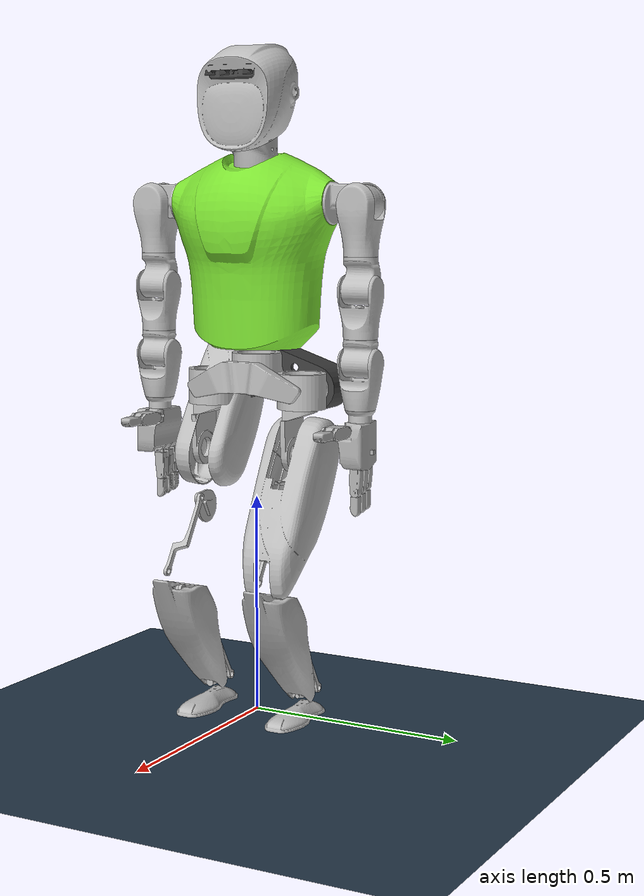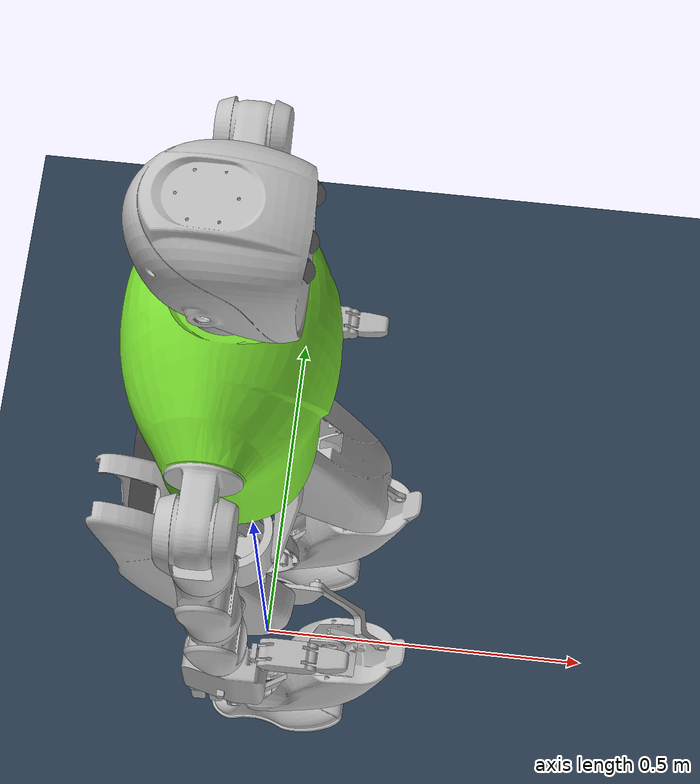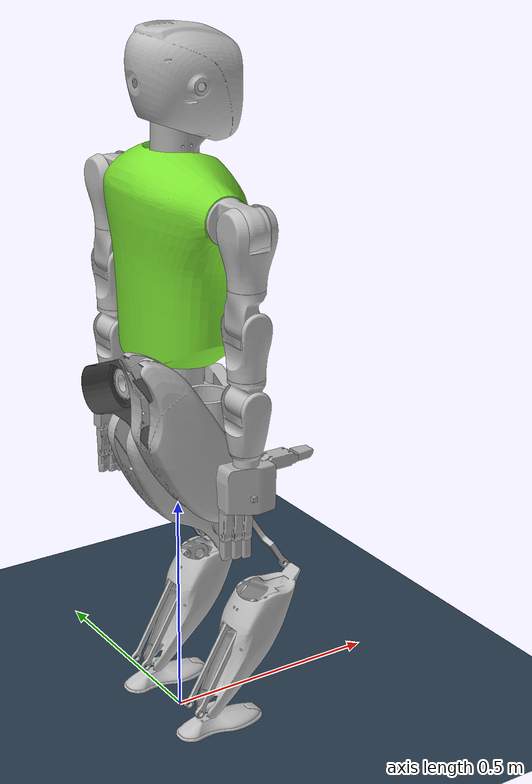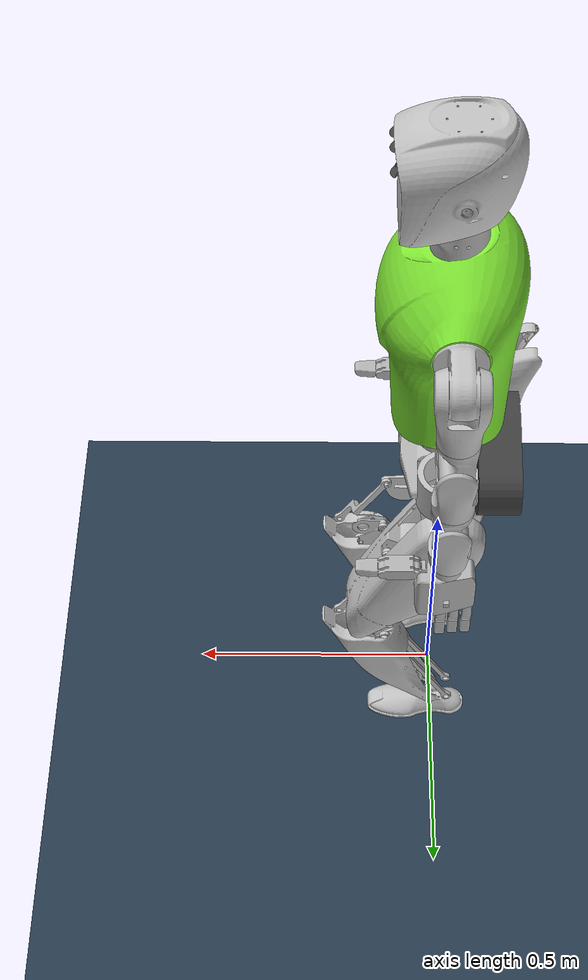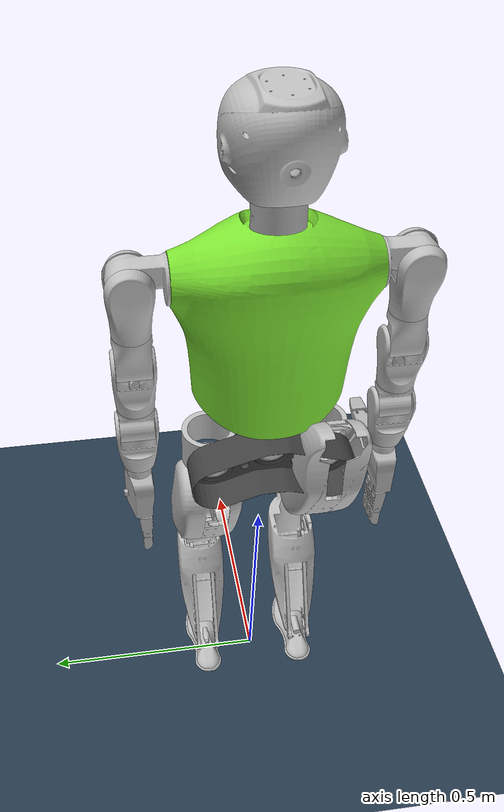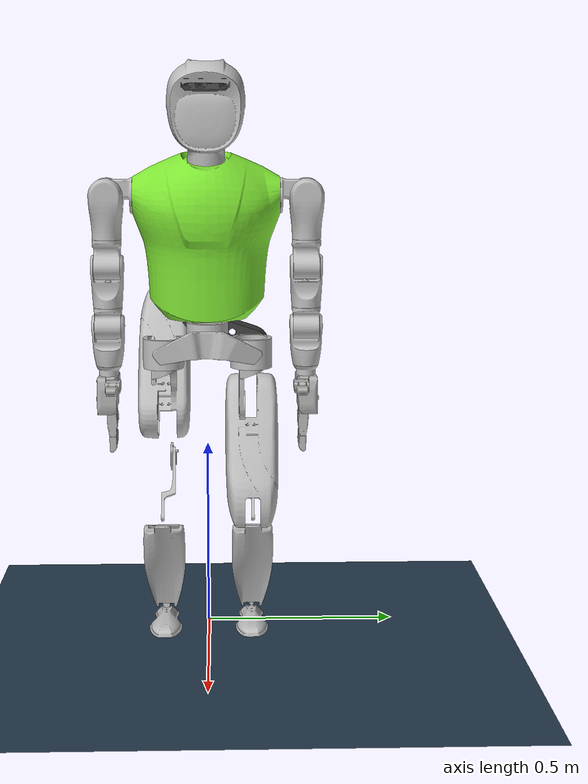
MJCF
<mujoco model="XBot-L">
  <compiler angle="radian" meshdir="../meshes/" eulerseq="zyx"/>
    <option timestep='0.001' iterations='50' solver='PGS' gravity='0 0 -9.81'>
    <flag sensornoise="enable" frictionloss="enable"/>
    </option>
    <size njmax="500" nconmax="100" />

    <visual>
        <quality shadowsize='4096'/>
        <map znear='0.05'/>
    </visual>

    <default>
        <joint limited='true'/>
        <motor ctrllimited='true'/>
        <geom  condim='4' contype="1" conaffinity="15" solref='0.001 2' friction='0.9 0.2 0.2'/>
        <equality solref='0.001 2'/>
        <default class='visualgeom'>
            <geom material='visualgeom' condim='1' contype='0' conaffinity='0'/>
        </default>
        <default class='visualgeom2'>
            <geom material='visualgeom2' condim='1' contype='0' conaffinity='0'/>
        </default>
        <default class='obstacle'>
            <geom material='obstacle' condim='3' contype='1' conaffinity='15'/>
        </default>

        <default class='neck_joint_param'>
            <joint  damping="0.01" frictionloss="0.01" armature="0.01"/>
        </default>

        <default class='waist_joint_param'>
            <joint  damping="2" frictionloss="2" armature="0.01"/>
        </default>

        <default class='leg_joint_param'>
            <joint  damping="0.01" frictionloss="0.01" armature="0.01"/>
        </default>

        <default class='arm_joint_param'>
            <joint  damping="1" frictionloss="1" armature="0.01"/>
        </default>

        <default class='finger_joint_param'>
            <joint  damping="0.00" frictionloss="0.00" armature="0.01"/>
        </default>
    </default>

  <asset>
    <texture type="skybox" builtin="gradient" rgb1="0.3 0.5 0.7" rgb2="0 0 0" width="512" height="512"/>
    <texture name="texplane" type="2d" builtin="checker" rgb1=".2 .3 .4" rgb2=".1 0.15 0.2"
        width="512" height="512" mark="cross" markrgb=".8 .8 .8"/>
    <texture name="texplane2" type="2d" builtin="checker" rgb1="1 0.3137 0.1843" rgb2="0.0 0.30196 0.38039"
        width="512" height="512" mark="cross" markrgb=".8 .8 .8"/>

    <material name="matplane" reflectance="0." texture="texplane" texrepeat="1 1" texuniform="true"/>
    <material name="matplane2" reflectance="0.1" texture="texplane2" texrepeat="1 1" texuniform="true"/>

    <material name='obstacle'  rgba='0.9 0.6 0.2 1'/>
    <material name='visualgeom'  rgba='0.5 0.9 0.2 1'/>
    <material name='visualgeom2'  rgba='0.5 0.9 0.2 1'/>

    <mesh name="base_link" file="base_link.STL"/>
    <mesh name="neck_base_link" file="neck_base_link.STL"/>
    <mesh name="neck_yaw_link" file="neck_yaw_link.STL"/>
    <mesh name="neck_pitch_link" file="neck_pitch_link.STL"/>
    <mesh name="realsense_link" file="realsense_link.STL"/>
    <mesh name="left_arm_base_link" file="left_arm_base_link.STL"/>
    <mesh name="left_shoulder_pitch_link" file="left_shoulder_pitch_link.STL"/>
    <mesh name="left_shoulder_roll_link" file="left_shoulder_roll_link.STL"/>
    <mesh name="left_arm_yaw_link" file="left_arm_yaw_link.STL"/>
    <mesh name="left_elbow_pitch_link" file="left_elbow_pitch_link.STL"/>
    <mesh name="left_elbow_yaw_link" file="left_elbow_yaw_link.STL"/>
    <mesh name="left_wrist_roll_link" file="left_wrist_roll_link.STL"/>
    <mesh name="left_wrist_yaw_link" file="left_wrist_yaw_link.STL"/>
    <mesh name="right_arm_base_link" file="right_arm_base_link.STL"/>
    <mesh name="right_shoulder_pitch_link" file="right_shoulder_pitch_link.STL"/>
    <mesh name="right_shoulder_roll_link" file="right_shoulder_roll_link.STL"/>
    <mesh name="right_arm_yaw_link" file="right_arm_yaw_link.STL"/>
    <mesh name="right_elbow_pitch_link" file="right_elbow_pitch_link.STL"/>
    <mesh name="right_elbow_yaw_link" file="right_elbow_yaw_link.STL"/>
    <mesh name="right_wrist_roll_link" file="right_wrist_roll_link.STL"/>
    <mesh name="right_wrist_yaw_link" file="right_wrist_yaw_link.STL"/>
    <mesh name="waist_yaw_link" file="waist_yaw_link.STL"/>
    <mesh name="waist_roll_link" file="waist_roll_link.STL"/>
    <mesh name="left_leg_roll_link" file="left_leg_roll_link.STL"/>
    <mesh name="left_leg_yaw_link" file="left_leg_yaw_link.STL"/>
    <mesh name="left_leg_pitch_link" file="left_leg_pitch_link.STL"/>
    <mesh name="left_knee_link" file="left_knee_link.STL"/>
    <mesh name="left_ankle_pitch_link" file="left_ankle_pitch_link.STL"/>
    <mesh name="left_ankle_roll_link" file="left_ankle_roll_link.STL"/>
    <mesh name="left_foot_ee_link" file="left_foot_ee_link.STL"/>
    <mesh name="left_ankle_pitch_motor1_link" file="left_ankle_pitch_motor1_link.STL"/>
    <mesh name="left_ankle_pitch_linkage1_link" file="left_ankle_pitch_linkage1_link.STL"/>
    <mesh name="left_ankle_pitch_motor2_link" file="left_ankle_pitch_motor2_link.STL"/>
    <mesh name="left_ankle_pitch_linkage2_link" file="left_ankle_pitch_linkage2_link.STL"/>
    <mesh name="left_knee_motor_link" file="left_knee_motor_link.STL"/>
    <mesh name="left_knee_linkage_link" file="left_knee_linkage_link.STL"/>
    <mesh name="right_leg_roll_link" file="right_leg_roll_link.STL"/>
    <mesh name="right_leg_yaw_link" file="right_leg_yaw_link.STL"/>
    <mesh name="right_leg_pitch_link" file="right_leg_pitch_link.STL"/>
    <mesh name="right_knee_link" file="right_knee_link.STL"/>
    <mesh name="right_ankle_pitch_link" file="right_ankle_pitch_link.STL"/>
    <mesh name="right_ankle_roll_link" file="right_ankle_roll_link.STL"/>
    <mesh name="right_foot_ee_link" file="right_foot_ee_link.STL"/>
    <mesh name="right_ankle_pitch_motor1_link" file="right_ankle_pitch_motor1_link.STL"/>
    <mesh name="right_ankle_pitch_linkage1_link" file="right_ankle_pitch_linkage1_link.STL"/>
    <mesh name="right_ankle_pitch_motor2_link" file="right_ankle_pitch_motor2_link.STL"/>
    <mesh name="right_ankle_pitch_linkage2_link" file="right_ankle_pitch_linkage2_link.STL"/>
    <mesh name="right_knee_motor_link" file="right_knee_motor_link.STL"/>
    <mesh name="right_knee_linkage_link" file="right_knee_linkage_link.STL"/>
    <mesh name="left_hand_link" file="left_hand_link.STL"/>
    <mesh name="left_hand_thumb_bend_link" file="left_hand_thumb_bend_link.STL"/>
    <mesh name="left_hand_thumb_rota_link1" file="left_hand_thumb_rota_link1.STL"/>
    <mesh name="left_hand_thumb_rota_link2" file="left_hand_thumb_rota_link2.STL"/>
    <mesh name="left_hand_thumb_tip" file="left_hand_thumb_tip.STL"/>
    <mesh name="left_hand_index_rota_link1" file="left_hand_index_rota_link1.STL"/>
    <mesh name="left_hand_index_rota_link2" file="left_hand_index_rota_link2.STL"/>
    <mesh name="left_hand_index_tip" file="left_hand_index_tip.STL"/>
    <mesh name="left_hand_mid_link1" file="left_hand_mid_link1.STL"/>
    <mesh name="left_hand_mid_link2" file="left_hand_mid_link2.STL"/>
    <mesh name="left_hand_mid_tip" file="left_hand_mid_tip.STL"/>
    <mesh name="left_hand_ring_link1" file="left_hand_ring_link1.STL"/>
    <mesh name="left_hand_ring_link2" file="left_hand_ring_link2.STL"/>
    <mesh name="left_hand_ring_tip" file="left_hand_ring_tip.STL"/>
    <mesh name="left_hand_pinky_link1" file="left_hand_pinky_link1.STL"/>
    <mesh name="left_hand_pinky_link2" file="left_hand_pinky_link2.STL"/>
    <mesh name="left_hand_pinky_tip" file="left_hand_pinky_tip.STL"/>
    <mesh name="left_hand_ee_link" file="left_hand_ee_link.STL"/>
    <mesh name="right_hand_link" file="right_hand_link.STL"/>
    <mesh name="right_hand_thumb_bend_link" file="right_hand_thumb_bend_link.STL"/>
    <mesh name="right_hand_thumb_rota_link1" file="right_hand_thumb_rota_link1.STL"/>
    <mesh name="right_hand_thumb_rota_link2" file="right_hand_thumb_rota_link2.STL"/>
    <mesh name="right_hand_thumb_rota_tip" file="right_hand_thumb_rota_tip.STL"/>
    <mesh name="right_hand_mid_link1" file="right_hand_mid_link1.STL"/>
    <mesh name="right_hand_mid_link2" file="right_hand_mid_link2.STL"/>
    <mesh name="right_hand_mid_tip" file="right_hand_mid_tip.STL"/>
    <mesh name="right_hand_ring_link1" file="right_hand_ring_link1.STL"/>
    <mesh name="right_hand_ring_link2" file="right_hand_ring_link2.STL"/>
    <mesh name="right_hand_ring_tip" file="right_hand_ring_tip.STL"/>
    <mesh name="right_hand_pinky_link1" file="right_hand_pinky_link1.STL"/>
    <mesh name="right_hand_pinky_link2" file="right_hand_pinky_link2.STL"/>
    <mesh name="right_hand_pinky_tip" file="right_hand_pinky_tip.STL"/>
    <mesh name="right_hand_ee_link" file="right_hand_ee_link.STL"/>
    <mesh name="right_hand_index_rota_link1" file="right_hand_index_rota_link1.STL"/>
    <mesh name="right_hand_index_rota_link2" file="right_hand_index_rota_link2.STL"/>
    <mesh name="right_hand_index_tip" file="right_hand_index_tip.STL"/>

    <hfield name='hf0' nrow='200' ncol='200' size="10 5 0.2 .1"/>
  </asset>
  <worldbody>

    <light directional="true" diffuse=".4 .4 .4" specular="0.1 0.1 0.1" pos="0 0 5.0" dir="0 0 -1" castshadow="false"/>
    <light directional="true" diffuse=".6 .6 .6" specular="0.2 0.2 0.2" pos="0 0 4" dir="0 0 -1"/>
    <geom name="ground" type="plane" size="0 0 1" pos="0.001 0 0" quat="1 0 0 0" material="matplane" condim="1" conaffinity='15'/>

    <body name="base_link" pos="0.0 0.0 0.88">

      <geom type="mesh" mesh="base_link" group="1" class="visualgeom"/>

      <inertial pos="-0.0033599 -0.00084664 0.1336" mass="9.9576" diaginertia="0.089966 0.060002 0.056135" />
      <joint type='slide' axis='1 0 0' limited='false' />
      <joint type='slide' axis='0 1 0' limited='false' />
      <joint type='slide' axis='0 0 1' limited='false' />
      <joint type='ball' limited='false' />
      <site name='imu' size='0.01' pos='0.0 0 0.0'/>

    <geom type="mesh" contype="0" conaffinity="0" group="1" density="0" rgba="0.75294 0.75294 0.75294 1" mesh="base_link"/>
    <geom type="mesh" rgba="0.75294 0.75294 0.75294 1" mesh="base_link" class="visualgeom"/>
    <geom pos="0 0 0.4" type="mesh" contype="0" conaffinity="0" group="1" density="0" rgba="0.86667 0.86667 0.8902 1" mesh="neck_base_link"/>
    <geom pos="0 0 0.4" type="mesh" rgba="0.86667 0.86667 0.8902 1" mesh="neck_base_link" class="visualgeom"/>
    <geom pos="0 0 0.2885" quat="0.499998 -0.5 -0.5 -0.500002" type="mesh" contype="0" conaffinity="0" group="1" density="0" rgba="0.75294 0.75294 0.75294 1" mesh="left_arm_base_link"/>
    <geom pos="0 0 0.2885" quat="0.499998 -0.5 -0.5 -0.500002" type="mesh" rgba="0.75294 0.75294 0.75294 1" mesh="left_arm_base_link"  class="visualgeom" />
    <geom pos="0 0 0.2885" quat="0.499998 0.5 -0.5 0.500002" type="mesh" contype="0" conaffinity="0" group="1" density="0" rgba="0.75294 0.75294 0.75294 1" mesh="right_arm_base_link"/>
    <geom pos="0 0 0.2885" quat="0.499998 0.5 -0.5 0.500002" type="mesh" rgba="0.75294 0.75294 0.75294 1" mesh="right_arm_base_link"  class="visualgeom"/>
    <body name="neck_yaw_link" pos="0 0 0.4">
      <inertial pos="0.023237 0.004247 0.035877" quat="0.397005 0.586611 0.583833 0.396754" mass="0.64979" diaginertia="0.000560363 0.000386635 0.000329382"/>
      <geom type="mesh" contype="0" conaffinity="0" group="1" density="0" rgba="0.69804 0.69804 0.69804 1" mesh="neck_yaw_link" />
      <geom type="mesh" rgba="0.69804 0.69804 0.69804 1" mesh="neck_yaw_link" class="visualgeom"/>
      <body name="neck_pitch_link" pos="0.032 0 0.044" quat="0.707105 -0.707108 0 0">
        <inertial pos="0.00116474 -0.0898836 0.000341624" quat="0.684515 0.684048 -0.178412 -0.178009" mass="1.39851" diaginertia="0.00709534 0.00537421 0.00502512"/>
        <geom type="mesh" contype="0" conaffinity="0" group="1" density="0" rgba="0.75294 0.75294 0.75294 1" mesh="neck_pitch_link"/>
        <geom type="mesh" rgba="0.75294 0.75294 0.75294 1" mesh="neck_pitch_link" class="visualgeom"/>
        <geom pos="0.066371 -0.12536 0.0475" quat="0.696363 0.122789 0.696365 -0.122789" type="mesh" contype="0" conaffinity="0" group="1" density="0" rgba="0.25098 0.25098 0.25098 1" mesh="realsense_link"/>
        <geom pos="0.066371 -0.12536 0.0475" quat="0.696363 0.122789 0.696365 -0.122789" type="mesh" rgba="0.25098 0.25098 0.25098 1" mesh="realsense_link" class="visualgeom"/>
      </body>
    </body>
    <body name="left_shoulder_pitch_link" pos="9.6789e-07 0.2635 0.2885" quat="0.499998 -0.5 -0.5 -0.500002">
      <inertial pos="3.5013e-05 -0.0038729 -0.011871" quat="0.707671 0.0144006 0.0197268 0.70612" mass="0.90505" diaginertia="0.00103283 0.000712178 0.000519141"/>
      <geom type="mesh" contype="0" conaffinity="0" group="1" density="0" rgba="0.75294 0.75294 0.75294 1" mesh="left_shoulder_pitch_link"/>
      <geom type="mesh" rgba="0.75294 0.75294 0.75294 1" mesh="left_shoulder_pitch_link" class="visualgeom"/>
      <body name="left_shoulder_roll_link" quat="0.499998 -0.5 -0.5 -0.500002">
        <inertial pos="-5.3445e-05 -0.065465 0.00044459" quat="0.498057 0.498933 -0.501229 0.501772" mass="0.72803" diaginertia="0.000997766 0.000834775 0.000467249"/>
        <geom type="mesh" contype="0" conaffinity="0" group="1" density="0" rgba="0.75294 0.75294 0.75294 1" mesh="left_shoulder_roll_link"/>
        <geom type="mesh" rgba="0.75294 0.75294 0.75294 1" mesh="left_shoulder_roll_link" class="visualgeom"/>
        <body name="left_arm_yaw_link" pos="0 -0.1905 0" quat="0.499998 0.5 -0.5 0.500002">
          <inertial pos="-0.00064229 0.0042682 -0.011976" quat="0.709136 0.00963378 0.0103249 0.704931" mass="0.6767" diaginertia="0.000553305 0.000424897 0.000272458"/>
          <geom type="mesh" contype="0" conaffinity="0" group="1" density="0" rgba="0.75294 0.75294 0.75294 1" mesh="left_arm_yaw_link"/>
          <geom type="mesh" rgba="0.75294 0.75294 0.75294 1" mesh="left_arm_yaw_link" class="visualgeom" />
          <body name="left_elbow_pitch_link" quat="0.707105 0.707108 0 0">
            <inertial pos="-4.1786e-05 0.063355 0.00048573" quat="0.709351 0.70485 0.000874233 -0.00267526" mass="0.64825" diaginertia="0.000668423 0.00057032 0.000514677"/>
            <geom type="mesh" contype="0" conaffinity="0" group="1" density="0" rgba="0.75294 0.75294 0.75294 1" mesh="left_elbow_pitch_link"/>
            <geom type="mesh" rgba="0.75294 0.75294 0.75294 1" mesh="left_elbow_pitch_link" class="visualgeom"/>
            <body name="left_elbow_yaw_link" pos="0 0.16 0" quat="0.707105 -0.707108 0 0">
              <inertial pos="-0.0001806 0.0042708 -0.0077002" quat="0.707516 0.00490266 0.00707023 0.706645" mass="0.64989" diaginertia="0.000432682 0.000312927 0.000253541"/>
              <geom type="mesh" contype="0" conaffinity="0" group="1" density="0" rgba="0.75294 0.75294 0.75294 1" mesh="left_elbow_yaw_link"/>
              <geom type="mesh" rgba="0.75294 0.75294 0.75294 1" mesh="left_elbow_yaw_link" class="visualgeom"/>
              <body name="left_wrist_roll_link" quat="0.707105 -0.707108 0 0">
                <inertial pos="-5.7422e-05 -0.062427 -0.00035934" quat="0.680308 0.732906 0.00476002 -0.00266826" mass="0.63795" diaginertia="0.000618001 0.000528558 0.000498312"/>
                <geom type="mesh" contype="0" conaffinity="0" group="1" density="0" rgba="0.75294 0.75294 0.75294 1" mesh="left_wrist_roll_link"/>
                <geom type="mesh" rgba="0.75294 0.75294 0.75294 1" mesh="left_wrist_roll_link" class="visualgeom"/>
                <body name="left_wrist_yaw_link" quat="0.707105 0.707108 0 0">
                  <inertial pos="-0.00039198 -0.00255567 0.165129" quat="0.771946 0.0479938 -0.00667939 0.633839" mass="0.711472" diaginertia="0.00134657 0.000935696 0.000684338"/>
                  <geom type="mesh" contype="0" conaffinity="0" group="1" density="0" rgba="0.75294 0.75294 0.75294 1" mesh="left_wrist_yaw_link"/>
                  <geom type="mesh" rgba="0.75294 0.75294 0.75294 1" mesh="left_wrist_yaw_link" class="visualgeom"/>

                  <geom pos="0 0 0.1135" quat="0 -1 2.67949e-08 2.67949e-08" type="mesh" contype="0" conaffinity="0" group="1" density="0" rgba="0.698039 0.698039 0.698039 1" mesh="left_hand_link"/>
                  <geom pos="0 0 0.1135" quat="0 -1 2.67949e-08 2.67949e-08" type="mesh" rgba="0.698039 0.698039 0.698039 1" mesh="left_hand_link"/>
                  <geom pos="4.28718e-09 0 0.1935" quat="-1 0 0 0" type="mesh" contype="0" conaffinity="0" group="1" density="0" rgba="0.698039 0.698039 0.698039 1" mesh="left_hand_ee_link"/>
                  <geom pos="4.28718e-09 0 0.1935" quat="-1 0 0 0" type="mesh" rgba="0.698039 0.698039 0.698039 1" mesh="left_hand_ee_link"/>
                  <body name="left_hand_thumb_bend_link" pos="0.02503 0.013 0.14625" quat="0 -1 2.67949e-08 2.67949e-08">
                    <geom type="mesh" contype="0" conaffinity="0" group="1" density="0" rgba="0.698039 0.698039 0.698039 1" mesh="left_hand_thumb_bend_link"/>
                    <geom type="mesh" rgba="0.698039 0.698039 0.698039 1" mesh="left_hand_thumb_bend_link"/>
                    <body name="left_hand_thumb_rota_link1" pos="0.032173 -0.0035045 0.00225">
                      <geom type="mesh" contype="0" conaffinity="0" group="1" density="0" rgba="0.698039 0.698039 0.698039 1" mesh="left_hand_thumb_rota_link1"/>
                      <geom type="mesh" rgba="0.698039 0.698039 0.698039 1" mesh="left_hand_thumb_rota_link1"/>
                      <body name="left_hand_thumb_rota_link2" pos="0.06 0 0">
                        <geom type="mesh" contype="0" conaffinity="0" group="1" density="0" rgba="0.698039 0.698039 0.698039 1" mesh="left_hand_thumb_rota_link2"/>
                        <geom type="mesh" rgba="0.698039 0.698039 0.698039 1" mesh="left_hand_thumb_rota_link2"/>
                        <geom pos="0.051457 0 0" type="mesh" contype="0" conaffinity="0" group="1" density="0" rgba="0.698039 0.698039 0.698039 1" mesh="left_hand_thumb_tip"/>
                        <geom pos="0.051457 0 0" type="mesh" rgba="0.698039 0.698039 0.698039 1" mesh="left_hand_thumb_tip"/>
                      </body>
                    </body>
                  </body>

                    <body name="left_hand_index_rota_link1" pos="0 0 -0.0087">
                      <geom type="mesh" contype="0" conaffinity="0" group="1" density="0" rgba="0.698039 0.698039 0.698039 1" mesh="left_hand_index_rota_link1"/>
                      <geom type="mesh" rgba="0.698039 0.698039 0.698039 1" mesh="left_hand_index_rota_link1"/>
                      <body name="left_hand_index_rota_link2" pos="0 0 -0.06675">
                        <geom type="mesh" contype="0" conaffinity="0" group="1" density="0" rgba="0.698039 0.698039 0.698039 1" mesh="left_hand_index_rota_link2"/>
                        <geom type="mesh" rgba="0.698039 0.698039 0.698039 1" mesh="left_hand_index_rota_link2"/>
                        <geom pos="0 0 -0.0532474" type="mesh" contype="0" conaffinity="0" group="1" density="0" rgba="0.698039 0.698039 0.698039 1" mesh="left_hand_index_tip"/>
                        <geom pos="0 0 -0.0532474" type="mesh" rgba="0.698039 0.698039 0.698039 1" mesh="left_hand_index_tip"/>
                      </body>
                    </body>
                  <body name="left_hand_mid_link1" pos="0.00533001 0.008 0.2207" quat="0 -1 2.67949e-08 2.67949e-08">
                    <geom type="mesh" contype="0" conaffinity="0" group="1" density="0" rgba="0.698039 0.698039 0.698039 1" mesh="left_hand_mid_link1"/>
                    <geom type="mesh" rgba="0.698039 0.698039 0.698039 1" mesh="left_hand_mid_link1"/>
                    <body name="left_hand_mid_link2" pos="0 0 -0.06525">
                      <geom type="mesh" contype="0" conaffinity="0" group="1" density="0" rgba="0.698039 0.698039 0.698039 1" mesh="left_hand_mid_link2"/>
                      <geom type="mesh" rgba="0.698039 0.698039 0.698039 1" mesh="left_hand_mid_link2"/>
                      <geom pos="0 0 -0.0532474" type="mesh" contype="0" conaffinity="0" group="1" density="0" rgba="0.698039 0.698039 0.698039 1" mesh="left_hand_mid_tip"/>
                      <geom pos="0 0 -0.0532474" type="mesh" rgba="0.698039 0.698039 0.698039 1" mesh="left_hand_mid_tip"/>
                    </body>
                  </body>
                  <body name="left_hand_ring_link1" pos="-0.01867 0.008 0.2167" quat="0 -1 2.67949e-08 2.67949e-08">
                    <geom type="mesh" contype="0" conaffinity="0" group="1" density="0" rgba="0.698039 0.698039 0.698039 1" mesh="left_hand_ring_link1"/>
                    <geom type="mesh" rgba="0.698039 0.698039 0.698039 1" mesh="left_hand_ring_link1"/>
                    <body name="left_hand_ring_link2" pos="0 0 -0.06525">
                      <geom type="mesh" contype="0" conaffinity="0" group="1" density="0" rgba="0.698039 0.698039 0.698039 1" mesh="left_hand_ring_link2"/>
                      <geom type="mesh" rgba="0.698039 0.698039 0.698039 1" mesh="left_hand_ring_link2"/>
                      <geom pos="0 0 -0.0532474" type="mesh" contype="0" conaffinity="0" group="1" density="0" rgba="0.698039 0.698039 0.698039 1" mesh="left_hand_ring_tip"/>
                      <geom pos="0 0 -0.0532474" type="mesh" rgba="0.698039 0.698039 0.698039 1" mesh="left_hand_ring_tip"/>
                    </body>
                  </body>
                  <body name="left_hand_pinky_link1" pos="-0.04267 0.008 0.2127" quat="0 -1 2.67949e-08 2.67949e-08">
                    <geom type="mesh" contype="0" conaffinity="0" group="1" density="0" rgba="0.698039 0.698039 0.698039 1" mesh="left_hand_pinky_link1"/>
                    <geom type="mesh" rgba="0.698039 0.698039 0.698039 1" mesh="left_hand_pinky_link1"/>
                    <body name="left_hand_pinky_link2" pos="0 0 -0.06525">
                      <geom type="mesh" contype="0" conaffinity="0" group="1" density="0" rgba="0.698039 0.698039 0.698039 1" mesh="left_hand_pinky_link2"/>
                      <geom type="mesh" rgba="0.698039 0.698039 0.698039 1" mesh="left_hand_pinky_link2"/>
                      <geom pos="0 0 -0.0532474" type="mesh" contype="0" conaffinity="0" group="1" density="0" rgba="0.698039 0.698039 0.698039 1" mesh="left_hand_pinky_tip"/>
                      <geom pos="0 0 -0.0532474" type="mesh" rgba="0.698039 0.698039 0.698039 1" mesh="left_hand_pinky_tip"/>
                    </body>
                  </body>

                </body>
              </body>
            </body>
          </body>
        </body>
      </body>
    </body>
    <body name="right_shoulder_pitch_link" pos="9.6789e-07 -0.2635 0.2885" quat="0.499998 0.5 -0.5 0.500002">
      <inertial pos="-1.5908e-05 0.0038729 -0.012191" quat="0.706165 0.0189977 0.0134851 0.707664" mass="0.90505" diaginertia="0.00103283 0.000712276 0.000519041"/>
      <geom type="mesh" contype="0" conaffinity="0" group="1" density="0" rgba="0.75294 0.75294 0.75294 1" mesh="right_shoulder_pitch_link"/>
      <geom type="mesh" rgba="0.75294 0.75294 0.75294 1" mesh="right_shoulder_pitch_link" class="visualgeom"/>
      <body name="right_shoulder_roll_link" quat="0.499998 -0.5 -0.5 -0.500002">
        <inertial pos="5.3331e-05 -0.065465 -0.00044443" quat="0.498935 0.498055 -0.501773 0.501227" mass="0.72803" diaginertia="0.000997766 0.000834775 0.000467249"/>
        <geom type="mesh" contype="0" conaffinity="0" group="1" density="0" rgba="0.75294 0.75294 0.75294 1" mesh="right_shoulder_roll_link"/>
        <geom type="mesh" rgba="0.75294 0.75294 0.75294 1" mesh="right_shoulder_roll_link" class="visualgeom"/>
        <body name="right_arm_yaw_link" pos="0 -0.1905 0" quat="0.499998 0.5 0.5 -0.500002">
          <inertial pos="-0.00088723 -0.0040764 -0.011947" quat="0.709028 0.0113664 0.0113125 0.704998" mass="0.67669" diaginertia="0.000554724 0.000423201 0.000272685"/>
          <geom type="mesh" contype="0" conaffinity="0" group="1" density="0" rgba="0.75294 0.75294 0.75294 1" mesh="right_arm_yaw_link"/>
          <geom type="mesh" rgba="0.75294 0.75294 0.75294 1" mesh="right_arm_yaw_link" class="visualgeom"/>
          <body name="right_elbow_pitch_link" quat="0.707105 0.707108 0 0">
            <inertial pos="-5.6114e-05 0.063356 -0.00046067" quat="0.70554 0.708652 -0.00451806 0.00243732" mass="0.64824" diaginertia="0.000667301 0.000571392 0.000514668"/>
            <geom type="mesh" contype="0" conaffinity="0" group="1" density="0" rgba="0.75294 0.75294 0.75294 1" mesh="right_elbow_pitch_link"/>
            <geom type="mesh" rgba="0.75294 0.75294 0.75294 1" mesh="right_elbow_pitch_link" class="visualgeom"/>
            <body name="right_elbow_yaw_link" pos="0 0.16 0" quat="0.707105 -0.707108 0 0">
              <inertial pos="9.9183e-05 -0.0042397 -0.0078479" quat="0.707208 -0.00511288 -0.00724591 0.70695" mass="0.6519" diaginertia="0.000432702 0.000313238 0.00025352"/>
              <geom type="mesh" contype="0" conaffinity="0" group="1" density="0" rgba="0.75294 0.75294 0.75294 1" mesh="right_elbow_yaw_link"/>
              <geom type="mesh" rgba="0.75294 0.75294 0.75294 1" mesh="right_elbow_yaw_link" class="visualgeom"/>
              <body name="right_wrist_roll_link" quat="0.707105 -0.707108 0 0">
                <inertial pos="5.6478e-05 -0.062427 0.00035729" quat="0.733049 0.680155 0.00258579 -0.00461887" mass="0.63795" diaginertia="0.00061793 0.00052862 0.000498299"/>
                <geom type="mesh" contype="0" conaffinity="0" group="1" density="0" rgba="0.75294 0.75294 0.75294 1" mesh="right_wrist_roll_link"/>
                <geom type="mesh" rgba="0.75294 0.75294 0.75294 1" mesh="right_wrist_roll_link" class="visualgeom"/>
                <body name="right_wrist_yaw_link" quat="0.707105 0.707108 0 0">
                  <inertial pos="-0.000392024 0.00255566 0.165129" quat="0.633877 -0.00668368 0.0479893 0.771915" mass="0.711471" diaginertia="0.00134655 0.000935713 0.000684338"/>
                  <geom type="mesh" contype="0" conaffinity="0" group="1" density="0" rgba="0.75294 0.75294 0.75294 1" mesh="right_wrist_yaw_link"/>
                  <geom type="mesh" rgba="0.75294 0.75294 0.75294 1" mesh="right_wrist_yaw_link" class="visualgeom"/>

                  <geom pos="0 0 0.1135" quat="0 -1 2.67949e-08 2.67949e-08" type="mesh" contype="0" conaffinity="0" group="1" density="0" rgba="0.698039 0.698039 0.698039 1" mesh="right_hand_link"/>
                  <geom pos="0 0 0.1135" quat="0 -1 2.67949e-08 2.67949e-08" type="mesh" rgba="0.698039 0.698039 0.698039 1" mesh="right_hand_link"/>
                  <geom pos="4.28718e-09 0 0.1935" quat="-1 0 0 0" type="mesh" contype="0" conaffinity="0" group="1" density="0" rgba="0.698039 0.698039 0.698039 1" mesh="right_hand_ee_link"/>
                  <geom pos="4.28718e-09 0 0.1935" quat="-1 0 0 0" type="mesh" rgba="0.698039 0.698039 0.698039 1" mesh="right_hand_ee_link"/>
                  <body name="right_hand_thumb_bend_link" pos="0.02433 -0.011 0.14625" quat="0 -1 2.67949e-08 2.67949e-08">
                    <geom type="mesh" contype="0" conaffinity="0" group="1" density="0" rgba="0.698039 0.698039 0.698039 1" mesh="right_hand_thumb_bend_link"/>
                    <geom type="mesh" rgba="0.698039 0.698039 0.698039 1" mesh="right_hand_thumb_bend_link"/>
                    <body name="right_hand_thumb_rota_link1" pos="0.032873 0.0055045 0.00225">
                      <geom type="mesh" contype="0" conaffinity="0" group="1" density="0" rgba="0.698039 0.698039 0.698039 1" mesh="right_hand_thumb_rota_link1"/>
                      <geom type="mesh" rgba="0.698039 0.698039 0.698039 1" mesh="right_hand_thumb_rota_link1"/>
                      <body name="right_hand_thumb_rota_link2" pos="0.06 0 0">
                        <geom type="mesh" contype="0" conaffinity="0" group="1" density="0" rgba="0.698039 0.698039 0.698039 1" mesh="right_hand_thumb_rota_link2"/>
                        <geom type="mesh" rgba="0.698039 0.698039 0.698039 1" mesh="right_hand_thumb_rota_link2"/>
                        <geom pos="0.051457 0 0" type="mesh" contype="0" conaffinity="0" group="1" density="0" rgba="0.698039 0.698039 0.698039 1" mesh="right_hand_thumb_rota_tip"/>
                        <geom pos="0.051457 0 0" type="mesh" rgba="0.698039 0.698039 0.698039 1" mesh="right_hand_thumb_rota_tip"/>
                      </body>
                    </body>
                  </body>
                  <body name="right_hand_mid_link1" pos="0.00533001 -0.008 0.2207" quat="0 -1 2.67949e-08 2.67949e-08">
                    <geom type="mesh" contype="0" conaffinity="0" group="1" density="0" rgba="0.698039 0.698039 0.698039 1" mesh="right_hand_mid_link1"/>
                    <geom type="mesh" rgba="0.698039 0.698039 0.698039 1" mesh="right_hand_mid_link1"/>
                    <body name="right_hand_mid_link2" pos="0 0 -0.06525">
                      <geom type="mesh" contype="0" conaffinity="0" group="1" density="0" rgba="0.698039 0.698039 0.698039 1" mesh="right_hand_mid_link2"/>
                      <geom type="mesh" rgba="0.698039 0.698039 0.698039 1" mesh="right_hand_mid_link2"/>
                      <geom pos="0 0 -0.053247" type="mesh" contype="0" conaffinity="0" group="1" density="0" rgba="0.698039 0.698039 0.698039 1" mesh="right_hand_mid_tip"/>
                      <geom pos="0 0 -0.053247" type="mesh" rgba="0.698039 0.698039 0.698039 1" mesh="right_hand_mid_tip"/>
                    </body>
                  </body>
                  <body name="right_hand_ring_link1" pos="-0.01867 -0.008 0.2167" quat="0 -1 2.67949e-08 2.67949e-08">
                    <geom type="mesh" contype="0" conaffinity="0" group="1" density="0" rgba="0.698039 0.698039 0.698039 1" mesh="right_hand_ring_link1"/>
                    <geom type="mesh" rgba="0.698039 0.698039 0.698039 1" mesh="right_hand_ring_link1"/>
                    <body name="right_hand_ring_link2" pos="0 0 -0.06525">
                      <geom type="mesh" contype="0" conaffinity="0" group="1" density="0" rgba="0.698039 0.698039 0.698039 1" mesh="right_hand_ring_link2"/>
                      <geom type="mesh" rgba="0.698039 0.698039 0.698039 1" mesh="right_hand_ring_link2"/>
                      <geom pos="0 0 -0.0532474" type="mesh" contype="0" conaffinity="0" group="1" density="0" rgba="0.698039 0.698039 0.698039 1" mesh="right_hand_ring_tip"/>
                      <geom pos="0 0 -0.0532474" type="mesh" rgba="0.698039 0.698039 0.698039 1" mesh="right_hand_ring_tip"/>
                    </body>
                  </body>
                  <body name="right_hand_pinky_link1" pos="-0.04267 -0.008 0.2127" quat="0 -1 2.67949e-08 2.67949e-08">
                    <geom type="mesh" contype="0" conaffinity="0" group="1" density="0" rgba="0.698039 0.698039 0.698039 1" mesh="right_hand_pinky_link1"/>
                    <geom type="mesh" rgba="0.698039 0.698039 0.698039 1" mesh="right_hand_pinky_link1"/>
                    <body name="right_hand_pinky_link2" pos="0 0 -0.06525">
                      <geom type="mesh" contype="0" conaffinity="0" group="1" density="0" rgba="0.698039 0.698039 0.698039 1" mesh="right_hand_pinky_link2"/>
                      <geom type="mesh" rgba="0.698039 0.698039 0.698039 1" mesh="right_hand_pinky_link2"/>
                      <geom pos="0 0 -0.053247" type="mesh" contype="0" conaffinity="0" group="1" density="0" rgba="0.698039 0.698039 0.698039 1" mesh="right_hand_pinky_tip"/>
                      <geom pos="0 0 -0.053247" type="mesh" rgba="0.698039 0.698039 0.698039 1" mesh="right_hand_pinky_tip"/>
                    </body>
                  </body>
                    <body name="right_hand_index_rota_link1" pos="0 0 -0.0087">
                      <geom type="mesh" contype="0" conaffinity="0" group="1" density="0" rgba="0.698039 0.698039 0.698039 1" mesh="right_hand_index_rota_link1"/>
                      <geom type="mesh" rgba="0.698039 0.698039 0.698039 1" mesh="right_hand_index_rota_link1"/>
                      <body name="right_hand_index_rota_link2" pos="0 0 -0.06675">
                        <geom type="mesh" contype="0" conaffinity="0" group="1" density="0" rgba="0.698039 0.698039 0.698039 1" mesh="right_hand_index_rota_link2"/>
                        <geom type="mesh" rgba="0.698039 0.698039 0.698039 1" mesh="right_hand_index_rota_link2"/>
                        <geom pos="0 0 -0.053247" type="mesh" contype="0" conaffinity="0" group="1" density="0" rgba="0.698039 0.698039 0.698039 1" mesh="right_hand_index_tip"/>
                        <geom pos="0 0 -0.053247" type="mesh" rgba="0.698039 0.698039 0.698039 1" mesh="right_hand_index_tip"/>
                      </body>
                    </body>

                </body>
              </body>
            </body>
          </body>
        </body>
      </body>
    </body>
    <body name="waist_yaw_link" pos="0 0 -0.0975">
      <inertial pos="0.0018236 3.106e-08 0.015461" quat="0.489087 0.48906 -0.510705 0.51068" mass="1.9214" diaginertia="0.00436856 0.00326474 0.0027745"/>
      <geom type="mesh" contype="0" conaffinity="0" group="1" density="0" rgba="0.75294 0.75294 0.75294 1" mesh="waist_yaw_link"/>
      <geom type="mesh" rgba="0.75294 0.75294 0.75294 1" mesh="waist_yaw_link" class="visualgeom"/>
      <body name="waist_roll_link" quat="0.499998 0.5 0.500002 0.5">
        <inertial pos="-8.7577e-07 -0.020553 -0.088247" quat="-0.00133962 0.707094 -0.00133967 0.707117" mass="5.1053" diaginertia="0.014655 0.011425 0.0067829"/>
        <geom type="mesh" contype="0" conaffinity="0" group="1" density="0" rgba="0.25098 0.25098 0.25098 1" mesh="waist_roll_link" />
        <geom type="mesh" rgba="0.25098 0.25098 0.25098 1" mesh="waist_roll_link" class="visualgeom"/>
        <body name="left_leg_roll_link" pos="0.117 -0.032 0" quat="0.707105 0 0 -0.707108">
          <inertial pos="-0.0048592 -0.00012591 -0.0028089" quat="0.999888 -3.66297e-05 -0.0149772 5.95363e-05" mass="1.7968" diaginertia="0.00366104 0.0026951 0.00249986"/>
          <joint name="left_leg_roll_joint" pos="0 0 0" axis="0 0 1" range="-0.44 1.57" class="leg_joint_param"/>
          <geom type="mesh" contype="0" conaffinity="0" group="1" density="0" rgba="0.75294 0.75294 0.75294 1" mesh="left_leg_roll_link" />
          <geom type="mesh" rgba="0.75294 0.75294 0.75294 1" mesh="left_leg_roll_link" class="visualgeom"/>
          <body name="left_leg_yaw_link" quat="-2.59734e-06 0.707105 2.59735e-06 0.707108">
            <inertial pos="-0.0013538 0.014654 0.077538" quat="0.710561 -0.0718629 0.0896866 0.694186" mass="0.61484" diaginertia="0.00144386 0.00122472 0.000433274"/>
            <joint name="left_leg_yaw_joint" pos="0 0 0" axis="0 0 1" range="-1.05 1.05" class="leg_joint_param"/>
            <geom type="mesh" contype="0" conaffinity="0" group="1" density="0" rgba="0.75294 0.75294 0.75294 1" mesh="left_leg_yaw_link"/>
            <geom type="mesh" rgba="0.75294 0.75294 0.75294 1" mesh="left_leg_yaw_link" class="visualgeom"/>
            <body name="left_leg_pitch_link" pos="0 0 0.1455" quat="0.683011 -0.683014 0.183013 0.183013">
              <inertial pos="-0.0014533 -0.0840382 -0.00698" quat="0.479097 0.509032 -0.478409 0.531485" mass="6.33273" diaginertia="0.0360948 0.0283875 0.00991078"/>
              <joint name="left_leg_pitch_joint" pos="0 0 0" axis="0 0 -1" range="-1.57 1.31" class="leg_joint_param"/>
              <geom type="mesh" contype="0" conaffinity="0" group="1" density="0" rgba="0.75294 0.75294 0.75294 1" mesh="left_leg_pitch_link"/>
              <geom type="mesh" rgba="0.75294 0.75294 0.75294 1" mesh="left_leg_pitch_link" class="visualgeom"/>
              <geom pos="-0.006 -0.1401 0" quat="0.999762 0 0 0.0218148" type="mesh" contype="0" conaffinity="0" group="1" density="0" rgba="0.75294 0.75294 0.75294 1" mesh="left_knee_motor_link"/>
              <geom pos="-0.006 -0.1401 0" quat="0.999762 0 0 0.0218148" type="mesh" rgba="0.75294 0.75294 0.75294 1" mesh="left_knee_motor_link" class="visualgeom"/>
              <geom pos="0.0389572 -0.138137 0" quat="0.718792 0 0 -0.695225" type="mesh" contype="0" conaffinity="0" group="1" density="0" rgba="0.75294 0.75294 0.75294 1" mesh="left_knee_linkage_link"/>
              <geom pos="0.0389572 -0.138137 0" quat="0.718792 0 0 -0.695225" type="mesh" rgba="0.75294 0.75294 0.75294 1" mesh="left_knee_linkage_link" class="visualgeom"/>
              <body name="left_knee_link" pos="0 -0.32 0" quat="0.866025 0 0 -0.500001">
                <inertial pos="0.0128769 -0.112283 -0.000148194" quat="0.495296 0.447205 -0.543395 0.509325" mass="2.40898" diaginertia="0.011127 0.0108686 0.00195796"/>
                <joint name="left_knee_joint" pos="0 0 0" axis="0 0 1" range="-1.05 1.1" class="leg_joint_param"/>
                <geom type="mesh" contype="0" conaffinity="0" group="1" density="0" rgba="0.75294 0.75294 0.75294 1" mesh="left_knee_link"/>
                <geom type="mesh" rgba="0.75294 0.75294 0.75294 1" mesh="left_knee_link" class="visualgeom"/>
                <geom pos="0.015 -0.052915 -0.023" quat="-2.31709e-06 0.63081 0.775938 -2.85018e-06" type="mesh" contype="0" conaffinity="0" group="1" density="0" rgba="0.75294 0.75294 0.75294 1" mesh="left_ankle_pitch_motor1_link"/>
                <geom pos="0.015 -0.052915 -0.023" quat="-2.31709e-06 0.63081 0.775938 -2.85018e-06" type="mesh" rgba="0.75294 0.75294 0.75294 1" mesh="left_ankle_pitch_motor1_link" class="visualgeom"/>
                <geom pos="-0.0290522 -0.0621021 -0.0229997" quat="-3.09069e-06 -0.70079 0.713368 1.98496e-06" type="mesh" contype="0" conaffinity="0" group="1" density="0" rgba="0.75294 0.75294 0.75294 1" mesh="left_ankle_pitch_linkage1_link"/>
                <geom pos="-0.0290522 -0.0621021 -0.0229997" quat="-3.09069e-06 -0.70079 0.713368 1.98496e-06" type="mesh" rgba="0.75294 0.75294 0.75294 1" mesh="left_ankle_pitch_linkage1_link" class="visualgeom"/>
                <geom pos="0.0175 -0.12287 0.023" quat="0.994561 0 0 0.104156" type="mesh" contype="0" conaffinity="0" group="1" density="0" rgba="0.75294 0.75294 0.75294 1" mesh="left_ankle_pitch_motor2_link"/>
                <geom pos="0.0175 -0.12287 0.023" quat="0.994561 0 0 0.104156" type="mesh" rgba="0.75294 0.75294 0.75294 1" mesh="left_ankle_pitch_motor2_link" class="visualgeom"/>
                <geom pos="-0.0265236 -0.132193 0.023" quat="0.6939 0 0 -0.720071" type="mesh" contype="0" conaffinity="0" group="1" density="0" rgba="0.75294 0.75294 0.75294 1" mesh="left_ankle_pitch_linkage2_link"/>
                <geom pos="-0.0265236 -0.132193 0.023" quat="0.6939 0 0 -0.720071" type="mesh" rgba="0.75294 0.75294 0.75294 1" mesh="left_ankle_pitch_linkage2_link" class="visualgeom"/>
                <body name="left_ankle_pitch_link" pos="0 -0.32 0" quat="-3.54804e-06 0.965926 0.25882 -9.50698e-07">
                  <inertial pos="-7.8974e-09 3.999e-08 0" quat="0 0.707107 0 0.707107" mass="0.043455" diaginertia="6.7102e-06 6.4906e-06 1.2169e-06"/>
                  <joint name="left_ankle_pitch_joint" pos="0 0 0" axis="0 0 1" range="-0.7 0.87" class="leg_joint_param" frictionloss="0.05"/>
                  <geom type="mesh" contype="0" conaffinity="0" group="1" density="0" rgba="0.75294 0.75294 0.75294 1" mesh="left_ankle_pitch_link"/>
                  <geom type="mesh" rgba="0.75294 0.75294 0.75294 1" mesh="left_ankle_pitch_link" class="visualgeom"/>
                  <body name="left_ankle_roll_link" quat="-2.59734e-06 0.707108 2.59735e-06 0.707105">
                    <inertial pos="-1.12265e-06 -0.0335772 0.0258065" quat="0.70709 0.0049062 -0.00488997 0.70709" mass="0.343495" diaginertia="0.000936831 0.000849235 0.000127719"/>
                    <joint name="left_ankle_roll_joint" pos="0 0 0" axis="0 0 1" range="-0.44 0.44" class="leg_joint_param" frictionloss="0.05"/>
                    <geom type="mesh" contype="0" conaffinity="0" group="1" density="0" rgba="0.75294 0.75294 0.75294 1" mesh="left_ankle_roll_link"/>
                    <geom type="mesh" rgba="0.75294 0.75294 0.75294 1" mesh="left_ankle_roll_link" />
                    <geom pos="0 -0.056 0" quat="0.499998 -0.5 -0.5 -0.500002" type="mesh" contype="0" conaffinity="0" group="1" density="0" rgba="0.75294 0.75294 0.75294 1" mesh="left_foot_ee_link"/>
                    <geom pos="0 -0.056 0" quat="0.499998 -0.5 -0.5 -0.500002" type="mesh" rgba="0.75294 0.75294 0.75294 1" mesh="left_foot_ee_link" class="visualgeom"/>
                  </body>
                </body>
              </body>
            </body>
          </body>
        </body>
        <body name="right_leg_roll_link" pos="-0.117 -0.032 0" quat="0.707105 0 0 -0.707108">
          <inertial pos="-0.0048592 0.00012789 -0.0028082" quat="0.999888 -6.85124e-05 -0.014951 -0.000155902" mass="1.7968" diaginertia="0.00366104 0.0026951 0.00249986"/>
          <joint name="right_leg_roll_joint" pos="0 0 0" axis="0 0 1" range="-1.57 0.44" class="leg_joint_param"/>
          <geom type="mesh" contype="0" conaffinity="0" group="1" density="0" rgba="0.75294 0.75294 0.75294 1" mesh="right_leg_roll_link"/>
          <geom type="mesh" rgba="0.75294 0.75294 0.75294 1" mesh="right_leg_roll_link" class="visualgeom"/>
          <body name="right_leg_yaw_link" quat="-2.59734e-06 0.707105 2.59735e-06 0.707108">
            <inertial pos="-0.0013541 -0.014654 0.077539" quat="0.694188 0.089687 -0.0718626 0.710559" mass="0.61483" diaginertia="0.00144386 0.00122472 0.000433274"/>
            <joint name="right_leg_yaw_joint" pos="0 0 0" axis="0 0 1" range="-1.05 1.05" class="leg_joint_param"/>
            <geom type="mesh" contype="0" conaffinity="0" group="1" density="0" rgba="0.75294 0.75294 0.75294 1" mesh="right_leg_yaw_link"/>
            <geom type="mesh" rgba="0.75294 0.75294 0.75294 1" mesh="right_leg_yaw_link" class="visualgeom"/>
            <body name="right_leg_pitch_link" pos="0 0 0.1455" quat="0.683011 0.683014 0.183013 -0.183013">
              <inertial pos="-0.00145653 0.0840665 -0.00696826" quat="0.509055 0.479076 -0.531484 0.478407" mass="6.33083" diaginertia="0.0360879 0.0283825 0.00990778"/>
              <joint name="right_leg_pitch_joint" pos="0 0 0" axis="0 0 -1" range="-1.31 1.57" class="leg_joint_param"/>
              <geom type="mesh" contype="0" conaffinity="0" group="1" density="0" rgba="0.75294 0.75294 0.75294 1" mesh="right_leg_pitch_link"/>
              <geom type="mesh" rgba="0.75294 0.75294 0.75294 1" mesh="right_leg_pitch_link" class="visualgeom"/>
              <geom pos="-0.006 0.1401 0" quat="0.999762 0 0 -0.0218148" type="mesh" contype="0" conaffinity="0" group="1" density="0" rgba="0.75294 0.75294 0.75294 1" mesh="right_knee_motor_link"/>
              <geom pos="-0.006 0.1401 0" quat="0.999762 0 0 -0.0218148" type="mesh" rgba="0.75294 0.75294 0.75294 1" mesh="right_knee_motor_link" class="visualgeom"/>
              <geom pos="0.0389572 0.138137 0" quat="0.718792 0 0 0.695225" type="mesh" contype="0" conaffinity="0" group="1" density="0" rgba="0.75294 0.75294 0.75294 1" mesh="right_knee_linkage_link"/>
              <geom pos="0.0389572 0.138137 0" quat="0.718792 0 0 0.695225" type="mesh" rgba="0.75294 0.75294 0.75294 1" mesh="right_knee_linkage_link" class="visualgeom"/>
              <body name="right_knee_link" pos="0 0.32 0" quat="0.866025 0 0 0.500001">
                <inertial pos="0.0128674 0.112364 -7.51069e-05" quat="0.446371 0.494396 -0.509902 0.544357" mass="2.41038" diaginertia="0.0111576 0.0108989 0.00195973"/>
                <joint name="right_knee_joint" pos="0 0 0" axis="0 0 1" range="-1.1 1.05" class="leg_joint_param"/>
                <geom type="mesh" contype="0" conaffinity="0" group="1" density="0" rgba="0.75294 0.75294 0.75294 1" mesh="right_knee_link"/>
                <geom type="mesh" rgba="0.75294 0.75294 0.75294 1" mesh="right_knee_link" class="visualgeom"/>
                <geom pos="0.015 0.052915 -0.023" quat="-3.76927e-07 0.102615 0.994721 -3.65381e-06" type="mesh" contype="0" conaffinity="0" group="1" density="0" rgba="0.75294 0.75294 0.75294 1" mesh="right_ankle_pitch_motor1_link"/>
                <geom pos="0.015 0.052915 -0.023" quat="-3.76927e-07 0.102615 0.994721 -3.65381e-06" type="mesh" rgba="0.75294 0.75294 0.75294 1" mesh="right_ankle_pitch_motor1_link" class="visualgeom"/>
                <geom pos="-0.0290523 0.0621016 -0.023" quat="1.98497e-06 0.700784 0.713373 -3.09068e-06" type="mesh" contype="0" conaffinity="0" group="1" density="0" rgba="0.75294 0.75294 0.75294 1" mesh="right_ankle_pitch_linkage1_link"/>
                <geom pos="-0.0290523 0.0621016 -0.023" quat="1.98497e-06 0.700784 0.713373 -3.09068e-06" type="mesh" rgba="0.75294 0.75294 0.75294 1" mesh="right_ankle_pitch_linkage1_link" class="visualgeom"/>
                <geom pos="0.0175 0.12287 0.023" quat="0.104157 0 0 0.994561" type="mesh" contype="0" conaffinity="0" group="1" density="0" rgba="0.75294 0.75294 0.75294 1" mesh="right_ankle_pitch_motor2_link"/>
                <geom pos="0.0175 0.12287 0.023" quat="0.104157 0 0 0.994561" type="mesh" rgba="0.75294 0.75294 0.75294 1" mesh="right_ankle_pitch_motor2_link" class="visualgeom"/>
                <geom pos="-0.0265236 0.132193 0.023" quat="0.693904 0 0 0.720068" type="mesh" contype="0" conaffinity="0" group="1" density="0" rgba="0.75294 0.75294 0.75294 1" mesh="right_ankle_pitch_linkage2_link"/>
                <geom pos="-0.0265236 0.132193 0.023" quat="0.693904 0 0 0.720068" type="mesh" rgba="0.75294 0.75294 0.75294 1" mesh="right_ankle_pitch_linkage2_link" class="visualgeom"/>
                <body name="right_ankle_pitch_link" pos="0 0.32 0" quat="-3.54804e-06 0.965926 -0.25882 9.50698e-07">
                  <inertial pos="0 0 0" quat="0.5 0.5 0.5 0.5" mass="0.099" diaginertia="1.89085e-05 1.89085e-05 4.40457e-06"/>
                  <joint name="right_ankle_pitch_joint" pos="0 0 0" axis="0 0 1" range="-0.87 0.7" class="leg_joint_param" frictionloss="0.05"/>
                  <geom type="mesh" contype="0" conaffinity="0" group="1" density="0" rgba="0.752941 0.752941 0.752941 1" mesh="right_ankle_pitch_link"/>
                  <geom type="mesh" rgba="0.752941 0.752941 0.752941 1" mesh="right_ankle_pitch_link" class="visualgeom"/>
                  <body name="right_ankle_roll_link" quat="0.707105 0 0.707108 0">
                    <inertial pos="0.000662319 -0.0335772 0.0258065" quat="0.716923 0.00189951 -0.00795253 0.697104" mass="0.343505" diaginertia="0.000990197 0.000849186 0.000180894"/>
                    <joint name="right_ankle_roll_joint" pos="0 0 0" axis="0 0 1" range="-0.44 0.44" class="leg_joint_param" frictionloss="0.05"/>
                    <geom type="mesh" contype="0" conaffinity="0" group="1" density="0" rgba="0.75294 0.75294 0.75294 1" mesh="right_ankle_roll_link"/>
                    <geom type="mesh" rgba="0.75294 0.75294 0.75294 1" mesh="right_ankle_roll_link" />
                    <geom pos="0 -0.056 0" quat="0.499998 -0.5 -0.5 -0.500002" type="mesh" contype="0" conaffinity="0" group="1" density="0" rgba="0.75294 0.75294 0.75294 1" mesh="right_foot_ee_link"/>
                    <geom pos="0 -0.056 0" quat="0.499998 -0.5 -0.5 -0.500002" type="mesh" rgba="0.75294 0.75294 0.75294 1" mesh="right_foot_ee_link" class="visualgeom"/>
                  </body>
                </body>
              </body>
            </body>
          </body>
        </body>
      </body>
    </body>
  </body>
  </worldbody>

  <actuator>
    <motor name="left_leg_roll_joint" joint="left_leg_roll_joint" gear="1" ctrllimited="true" ctrlrange="-200 200"/>
    <motor name="left_leg_yaw_joint" joint="left_leg_yaw_joint" gear="1" ctrllimited="true" ctrlrange="-200 200"/>
    <motor name="left_leg_pitch_joint" joint="left_leg_pitch_joint" gear="1" ctrllimited="true" ctrlrange="-200 200"/>
    <motor name="left_knee_joint" joint="left_knee_joint" gear="1" ctrllimited="true" ctrlrange="-200 200"/>
    <motor name="left_ankle_pitch_joint" joint="left_ankle_pitch_joint" gear="1" ctrllimited="true" ctrlrange="-200 200"/>
    <motor name="left_ankle_roll_joint" joint="left_ankle_roll_joint" gear="1" ctrllimited="true" ctrlrange="-200 200"/>
    <motor name="right_leg_roll_joint" joint="right_leg_roll_joint" gear="1" ctrllimited="true" ctrlrange="-200 200"/>
    <motor name="right_leg_yaw_joint" joint="right_leg_yaw_joint" gear="1" ctrllimited="true" ctrlrange="-200 200"/>
    <motor name="right_leg_pitch_joint" joint="right_leg_pitch_joint" gear="1" ctrllimited="true" ctrlrange="-200 200"/>
    <motor name="right_knee_joint" joint="right_knee_joint" gear="1" ctrllimited="true" ctrlrange="-200 200"/>
    <motor name="right_ankle_pitch_joint" joint="right_ankle_pitch_joint" gear="1" ctrllimited="true" ctrlrange="-200 200"/>
    <motor name="right_ankle_roll_joint" joint="right_ankle_roll_joint" gear="1" ctrllimited="true" ctrlrange="-200 200"/>
  </actuator>

     <sensor>
        <actuatorpos name='left_leg_roll_joint_p'  actuator='left_leg_roll_joint' user='13'/>
        <actuatorpos name='left_leg_yaw_joint_p'  actuator='left_leg_yaw_joint' user='13'/>
        <actuatorpos name='left_leg_pitch_joint_p'  actuator='left_leg_pitch_joint' user='13'/>
        <actuatorpos name='left_knee_joint_p'  actuator='left_knee_joint' user='13'/>
        <actuatorpos name='left_ankle_pitch_joint_p'  actuator='left_ankle_pitch_joint' user='13'/>
        <actuatorpos name='left_ankle_roll_joint_p'  actuator='left_ankle_roll_joint' user='13'/>
        <actuatorpos name='right_leg_roll_joint_p'  actuator='right_leg_roll_joint' user='13'/>
        <actuatorpos name='right_leg_yaw_joint_p'  actuator='right_leg_yaw_joint' user='13'/>
        <actuatorpos name='right_leg_pitch_joint_p'  actuator='right_leg_pitch_joint' user='13'/>
        <actuatorpos name='right_knee_joint_p'  actuator='right_knee_joint' user='13'/>
        <actuatorpos name='right_ankle_pitch_joint_p'  actuator='right_ankle_pitch_joint' user='13'/>
        <actuatorpos name='right_ankle_roll_joint_p'  actuator='right_ankle_roll_joint' user='13'/>

        <actuatorvel name='left_leg_roll_joint_v'  actuator='left_leg_roll_joint' user='13'/>
        <actuatorvel name='left_leg_yaw_joint_v'  actuator='left_leg_yaw_joint' user='13'/>
        <actuatorvel name='left_leg_pitch_joint_v'  actuator='left_leg_pitch_joint' user='13'/>
        <actuatorvel name='left_knee_joint_v'  actuator='left_knee_joint' user='13'/>
        <actuatorvel name='left_ankle_pitch_joint_v'  actuator='left_ankle_pitch_joint' user='13'/>
        <actuatorvel name='left_ankle_roll_joint_v'  actuator='left_ankle_roll_joint' user='13'/>
        <actuatorvel name='right_leg_roll_joint_v'  actuator='right_leg_roll_joint' user='13'/>
        <actuatorvel name='right_leg_yaw_joint_v'  actuator='right_leg_yaw_joint' user='13'/>
        <actuatorvel name='right_leg_pitch_joint_v'  actuator='right_leg_pitch_joint' user='13'/>
        <actuatorvel name='right_knee_joint_v'  actuator='right_knee_joint' user='13'/>
        <actuatorvel name='right_ankle_pitch_joint_v'  actuator='right_ankle_pitch_joint' user='13'/>
        <actuatorvel name='right_ankle_roll_joint_v'  actuator='right_ankle_roll_joint' user='13'/>

        <actuatorfrc name='left_leg_roll_joint_f'  actuator='left_leg_roll_joint' user='13' noise='1e-3'/>
        <actuatorfrc name='left_leg_yaw_joint_f'  actuator='left_leg_yaw_joint' user='13' noise='1e-3'/>
        <actuatorfrc name='left_leg_pitch_joint_f'  actuator='left_leg_pitch_joint' user='13' noise='1e-3'/>
        <actuatorfrc name='left_knee_joint_f'  actuator='left_knee_joint' user='13' noise='1e-3'/>
        <actuatorfrc name='left_ankle_pitch_joint_f'  actuator='left_ankle_pitch_joint' user='13' noise='1e-3'/>
        <actuatorfrc name='left_ankle_roll_joint_f'  actuator='left_ankle_roll_joint' user='13' noise='1e-3'/>
        <actuatorfrc name='right_leg_roll_joint_f'  actuator='right_leg_roll_joint' user='13' noise='1e-3'/>
        <actuatorfrc name='right_leg_yaw_joint_f'  actuator='right_leg_yaw_joint' user='13' noise='1e-3'/>
        <actuatorfrc name='right_leg_pitch_joint_f'  actuator='right_leg_pitch_joint' user='13' noise='1e-3'/>
        <actuatorfrc name='right_knee_joint_f'  actuator='right_knee_joint' user='13' noise='1e-3'/>
        <actuatorfrc name='right_ankle_pitch_joint_f'  actuator='right_ankle_pitch_joint' user='13' noise='1e-3'/>
        <actuatorfrc name='right_ankle_roll_joint_f'  actuator='right_ankle_roll_joint' user='13' noise='1e-3'/>

        <framequat     name='orientation' objtype='site' noise='0.001' objname='imu'/>
        <framepos     name='position' objtype='site' noise='0.001' objname='imu'/>
        <gyro          name='angular-velocity'    site='imu' noise='0.005' cutoff='34.9'/>
        <velocimeter   name='linear-velocity'     site='imu' noise='0.001' cutoff='30'/>
        <accelerometer name='linear-acceleration' site='imu' noise='0.005' cutoff='157'/>
        <magnetometer  name='magnetometer'        site='imu'/>

    </sensor>
</mujoco>
